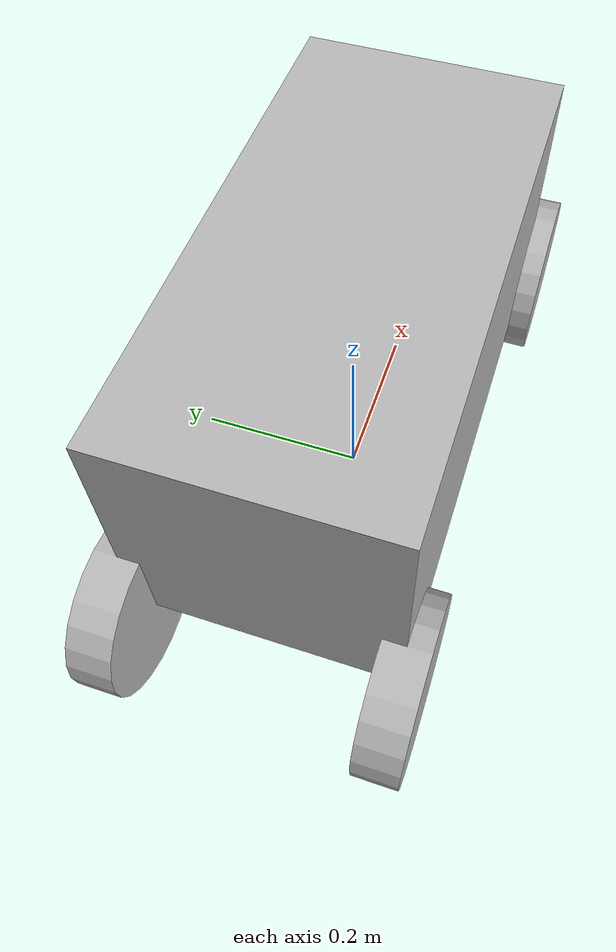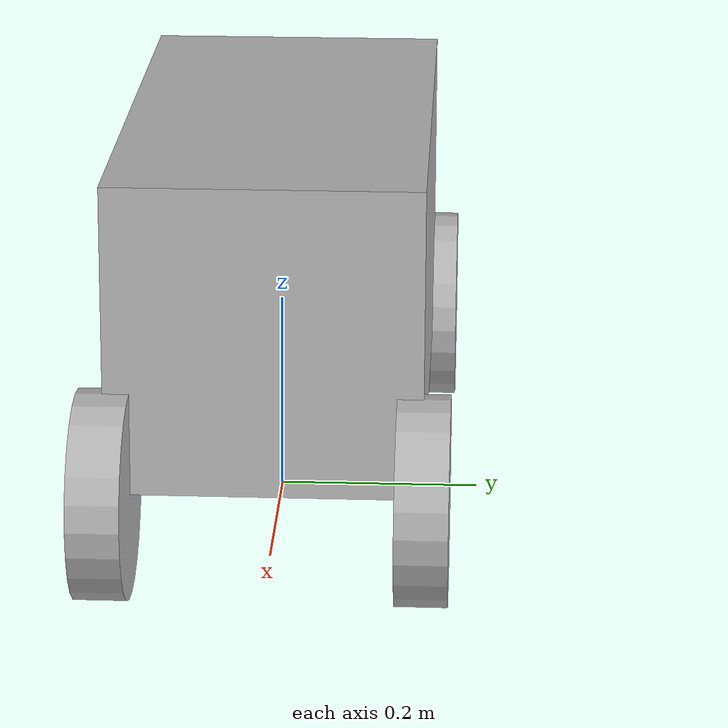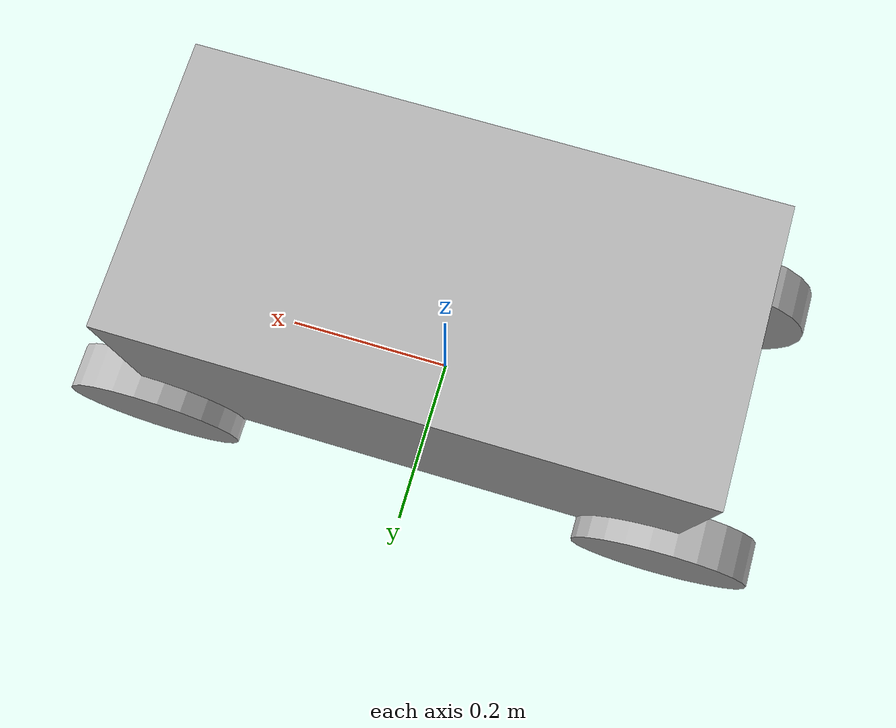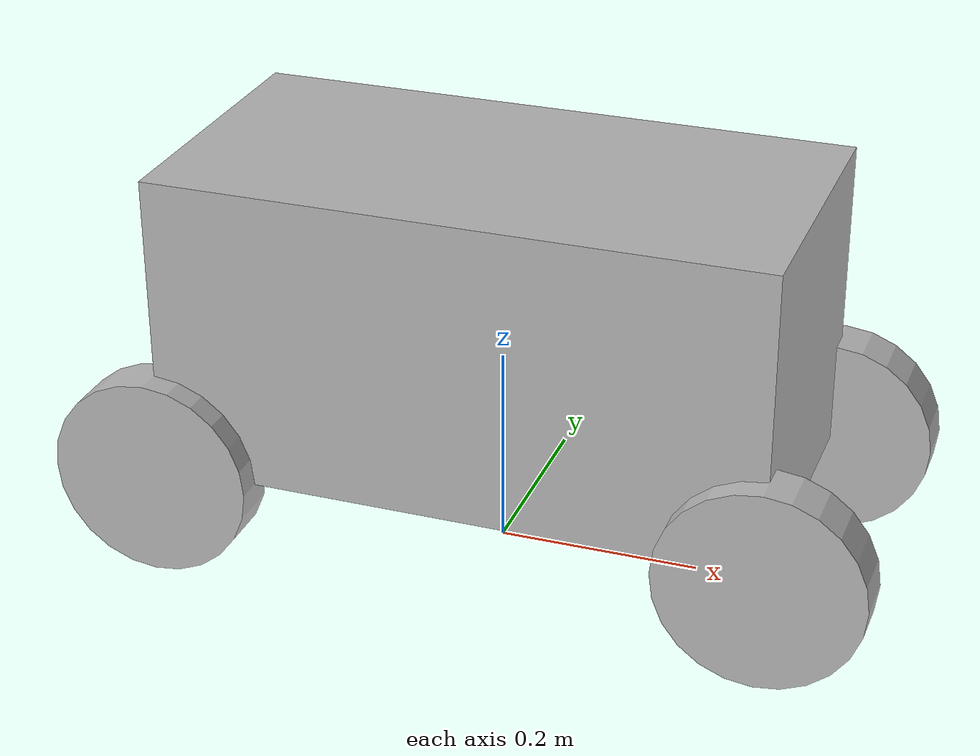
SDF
<sdf version='1.6'>
  <model name='golfcart'>
    <link name='base_link'>
      <pose frame=''>0 0 0 0 -0 0</pose>
      <inertial>
        <pose frame=''>-0.05 0 0.016667 0 -0 0</pose>
        <mass>1.2</mass>
        <inertia>
          <ixx>0.0228267</ixx>
          <ixy>-8.67362e-20</ixy>
          <ixz>0.005</ixz>
          <iyy>0.0545007</iyy>
          <iyz>1.05593e-06</iyz>
          <izz>0.05866</izz>
        </inertia>
      </inertial>
      <collision name='base_link_collision'>
        <pose frame=''>0 0 0 0 -0 0</pose>
        <geometry>
          <box>
            <size>0.6 0.3 0.3</size>
          </box>
        </geometry>
      </collision>
      <collision name='base_link_fixed_joint_lump__back_left_wheel_collision_1'>
        <pose frame=''>-0.3 0.15 0.1 1.57 -0 0</pose>
        <geometry>
          <cylinder>
            <length>0.05</length>
            <radius>0.1</radius>
          </cylinder>
        </geometry>
      </collision>
      <collision name='base_link_fixed_joint_lump__back_right_wheel_collision_2'>
        <pose frame=''>-0.3 -0.15 0.1 1.57 -0 0</pose>
        <geometry>
          <cylinder>
            <length>0.05</length>
            <radius>0.1</radius>
          </cylinder>
        </geometry>
      </collision>
      <visual name='base_link_visual'>
        <pose frame=''>0 0 0.25 0 -0 0</pose>
        <geometry>
          <box>
            <size>0.6 0.3 0.3</size>
          </box>
        </geometry>
      </visual>
      <visual name='base_link_fixed_joint_lump__back_left_wheel_visual_1'>
        <pose frame=''>-0.3 0.15 0.1 1.57 -0 0</pose>
        <geometry>
          <cylinder>
            <length>0.05</length>
            <radius>0.1</radius>
          </cylinder>
        </geometry>
      </visual>
      <visual name='base_link_fixed_joint_lump__back_right_wheel_visual_2'>
        <pose frame=''>-0.3 -0.15 0.1 1.57 -0 0</pose>
        <geometry>
          <cylinder>
            <length>0.05</length>
            <radius>0.1</radius>
          </cylinder>
        </geometry>
      </visual>
    </link>
    <link name='front_left_wheel'>
      <pose frame=''>0.3 0.15 0.1 1.57 -0 0</pose>
      <inertial>
        <pose frame=''>0 0 0 0 -0 0</pose>
        <mass>0.1</mass>
        <inertia>
          <ixx>0.00083</ixx>
          <ixy>0</ixy>
          <ixz>0</ixz>
          <iyy>0.00083</iyy>
          <iyz>0</iyz>
          <izz>0.000167</izz>
        </inertia>
      </inertial>
      <collision name='front_left_wheel_collision'>
        <pose frame=''>0 0 0 0 -0 0</pose>
        <geometry>
          <cylinder>
            <length>0.05</length>
            <radius>0.1</radius>
          </cylinder>
        </geometry>
      </collision>
      <visual name='front_left_wheel_visual'>
        <pose frame=''>0 0 0 0 -0 0</pose>
        <geometry>
          <cylinder>
            <length>0.05</length>
            <radius>0.1</radius>
          </cylinder>
        </geometry>
      </visual>
    </link>
    <joint name='front_left_wheel_joint' type='revolute'>
      <child>front_left_wheel</child>
      <parent>base_link</parent>
      <axis>
        <xyz>0 0.000796 1</xyz>
        <limit>
          <lower>-0.785</lower>
          <upper>0.785</upper>
          <effort>30</effort>
          <velocity>1</velocity>
        </limit>
        <dynamics>
          <spring_reference>0</spring_reference>
          <spring_stiffness>0</spring_stiffness>
        </dynamics>
        <use_parent_model_frame>1</use_parent_model_frame>
      </axis>
    </joint>
    <link name='front_right_wheel'>
      <pose frame=''>0.3 -0.15 0.1 1.57 -0 0</pose>
      <inertial>
        <pose frame=''>0 0 0 0 -0 0</pose>
        <mass>0.1</mass>
        <inertia>
          <ixx>0.00083</ixx>
          <ixy>0</ixy>
          <ixz>0</ixz>
          <iyy>0.00083</iyy>
          <iyz>0</iyz>
          <izz>0.000167</izz>
        </inertia>
      </inertial>
      <collision name='front_right_wheel_collision'>
        <pose frame=''>0 0 0 0 -0 0</pose>
        <geometry>
          <cylinder>
            <length>0.05</length>
            <radius>0.1</radius>
          </cylinder>
        </geometry>
      </collision>
      <visual name='front_right_wheel_visual'>
        <pose frame=''>0 0 0 0 -0 0</pose>
        <geometry>
          <cylinder>
            <length>0.05</length>
            <radius>0.1</radius>
          </cylinder>
        </geometry>
      </visual>
    </link>
    <joint name='front_right_wheel_joint' type='revolute'>
      <child>front_right_wheel</child>
      <parent>base_link</parent>
      <axis>
        <xyz>0 0.000796 1</xyz>
        <limit>
          <lower>-0.785</lower>
          <upper>0.785</upper>
          <effort>30</effort>
          <velocity>1</velocity>
        </limit>
        <dynamics>
          <spring_reference>0</spring_reference>
          <spring_stiffness>0</spring_stiffness>
        </dynamics>
        <use_parent_model_frame>1</use_parent_model_frame>
      </axis>
    </joint>
    <static>0</static>
    <plugin name='differential_drive_controller' filename='libgazebo_ros_diff_drive.so'>
      <leftJoint>front_right_wheel_joint</leftJoint>
      <rightJoint>front_left_wheel_joint</rightJoint>
      <robotBaseFrame>base_link</robotBaseFrame>
      <wheelSeparation>0.25</wheelSeparation>
      <wheelDiameter>0.3</wheelDiameter>
      <publishWheelJointState>true</publishWheelJointState>
    </plugin>
  </model>
</sdf>
